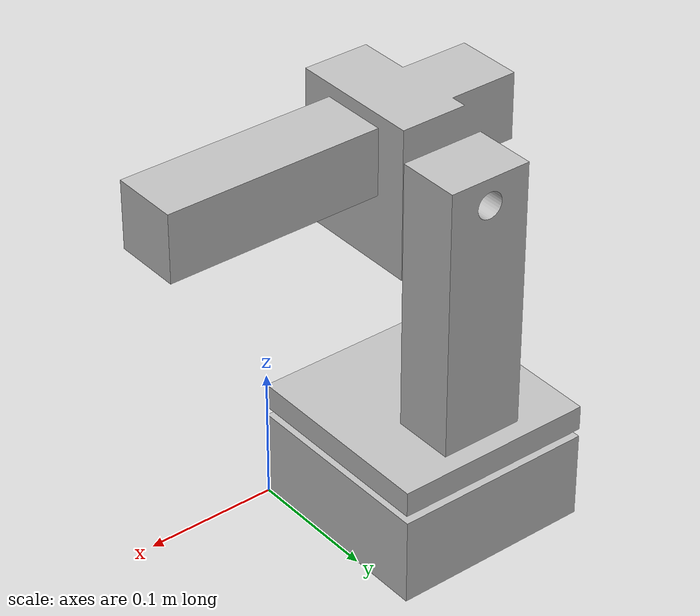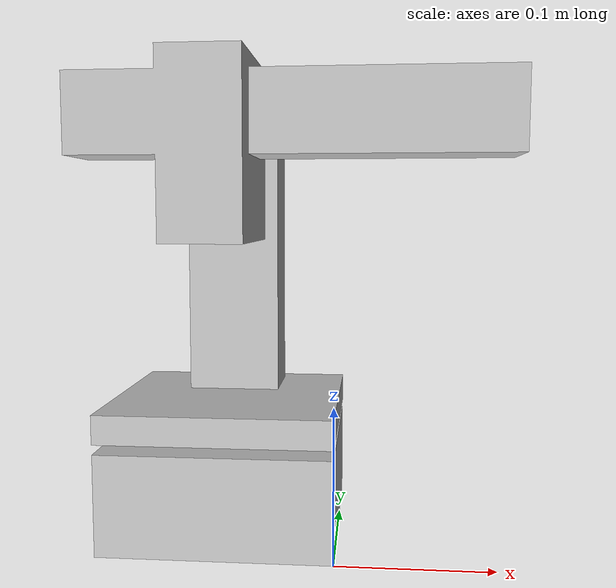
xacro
<?xml version="1.0" ?>
<robot name="DOUG_DIA" xmlns:xacro="http://www.ros.org/wiki/xacro">

<xacro:include filename="$(find my_detector_pkg)/urdf/DOUG_DIA.trans" />
<xacro:include filename="$(find my_detector_pkg)/urdf/DOUG_DIA.gazebo" />

<material name="silver">
  <color rgba="0.75 0.75 0.75 1.0"/>
</material>

<link name="world_dummy"/>
<joint name="world_joint" type="fixed">
  <parent link="world_dummy"/>
  <child link="base_link"/>
  <origin xyz="0 0 0" rpy="0 0 0"/>
</joint>

<link name="base_link">
  <inertial>
    <origin xyz="-0.07619999999999999 0.07619999999999999 0.03335" rpy="0 0 0"/>
    <mass value="12.1608918072"/>
    <inertia ixx="0.028046" iyy="0.028046" izz="0.047074" ixy="0.0" iyz="-0.0" ixz="0.0"/>
  </inertial>
  <visual>
    <origin xyz="0 0 0" rpy="0 0 0"/>
    <geometry>
      <mesh filename="package://my_detector_pkg/meshes/base_link.stl" scale="0.001 0.001 0.001"/>
    </geometry>
    <material name="silver"/>
  </visual>
  <collision>
    <origin xyz="0 0 0" rpy="0 0 0"/>
    <geometry>
      <mesh filename="package://my_detector_pkg/meshes/base_link.stl" scale="0.001 0.001 0.001"/>
    </geometry>
  </collision>
</link>

<link name="top_1">
  <inertial>
    <origin xyz="6.320565881803852e-05 0.02204657355503649 0.079491384310047" rpy="0 0 0"/>
    <mass value="8.207143738753775"/>
    <inertia ixx="0.051275" iyy="0.049096" izz="0.018883" ixy="-6e-06" iyz="-0.008445" ixz="-2.4e-05"/>
  </inertial>
  <visual>
    <origin xyz="0.0762 -0.0762 -0.0667" rpy="0 0 0"/>
    <geometry>
      <mesh filename="package://my_detector_pkg/meshes/top_1.stl" scale="0.001 0.001 0.001"/>
    </geometry>
    <material name="silver"/>
  </visual>
  <collision>
    <origin xyz="0.0762 -0.0762 -0.0667" rpy="0 0 0"/>
    <geometry>
      <mesh filename="package://my_detector_pkg/meshes/top_1.stl" scale="0.001 0.001 0.001"/>
    </geometry>
  </collision>
</link>

<link name="mount_1">
  <inertial>
    <origin xyz="0.18262673870655244 -0.213885197874163 -0.0816825756014195" rpy="0 0 0"/>
    <mass value="9.256507206311536"/>
    <inertia ixx="0.012051" iyy="0.05073" izz="0.048498" ixy="2.4e-05" iyz="2e-05" ixz="-0.003092"/>
  </inertial>
  <visual>
    <origin xyz="0.075 -0.243614 -0.2775" rpy="0 0 0"/>
    <geometry>
      <mesh filename="package://my_detector_pkg/meshes/mount_1.stl" scale="0.001 0.001 0.001"/>
    </geometry>
    <material name="silver"/>
  </visual>
  <collision>
    <origin xyz="0.228079 -0.243614 -0.3505" rpy="0 0 0"/>
    <geometry>
      <mesh filename="package://my_detector_pkg/meshes/mount_1.stl" scale="0.001 0.001 0.001"/>
    </geometry>
  </collision>
</link>

<joint name="Revolute 1" type="continuous">
  <origin xyz="-0.0762 0.0762 0.0667" rpy="0 0 0"/>
  <parent link="base_link"/>
  <child link="top_1"/>
  <axis xyz="0.0 0.0 1.0"/>
</joint>

<joint name="Revolute 2" type="continuous">
  <origin xyz="0.0 0.167414 0.21" rpy="0 0 0"/>
  <parent link="top_1"/>
  <child link="mount_1"/>
  <axis xyz="0.002867 0.999996 0.0"/>
</joint>

</robot>

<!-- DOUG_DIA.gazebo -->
<robot name="DOUG_DIA" xmlns:xacro="http://www.ros.org/wiki/xacro" >

<xacro:property name="body_color" value="Gazebo/Silver" />

<gazebo>
  <plugin name="control" filename="libgazebo_ros_control.so"/>
</gazebo>
<gazebo reference="base_link">
  <material>${body_color}</material>
  <mu1>0.2</mu1>
  <mu2>0.2</mu2>
  <selfCollide>true</selfCollide>
  <gravity>true</gravity>
</gazebo>

<gazebo reference="top_1">
  <material>${body_color}</material>
  <mu1>0.2</mu1>
  <mu2>0.2</mu2>
  <selfCollide>true</selfCollide>
</gazebo>

<gazebo reference="mount_1">
  <material>${body_color}</material>
  <mu1>0.2</mu1>
  <mu2>0.2</mu2>
  <selfCollide>true</selfCollide>
</gazebo>

</robot>
